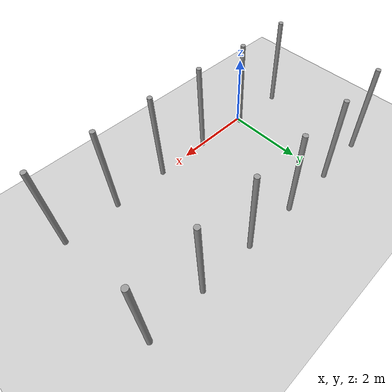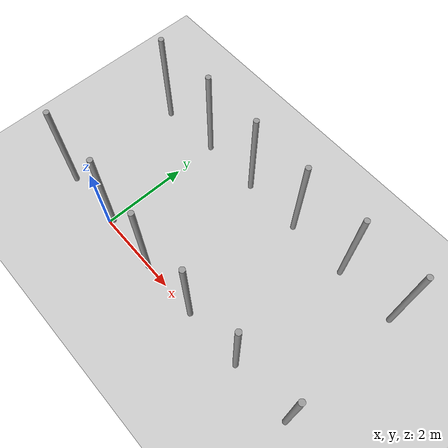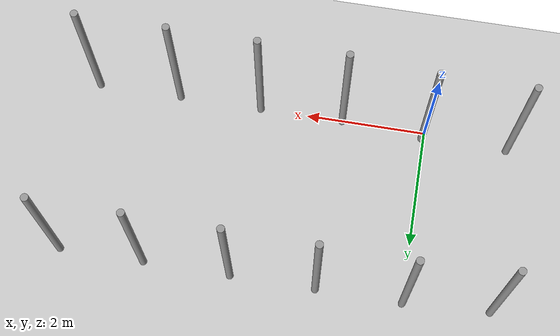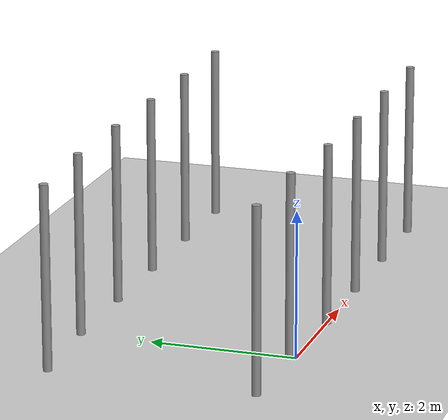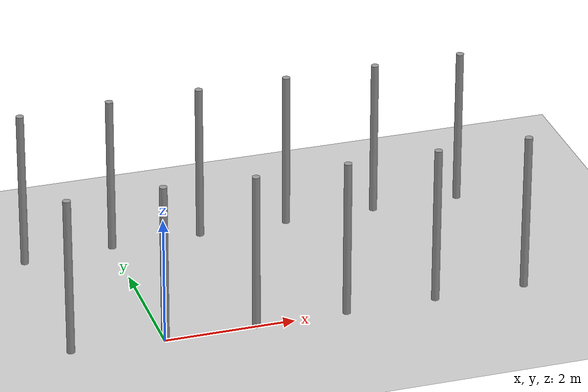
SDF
<sdf version="1.6">
 <world name="default">
  <light name="sun" type="directional">
   <pose>0 0 10 0 -0 0</pose>
   <diffuse>0.8 0.8 0.8 1</diffuse>
   <specular>0.1 0.1 0.1 1</specular>
   <attenuation>
    <range>1000</range>
    <constant>0.9</constant>
    <linear>0.01</linear>
    <quadratic>0.001</quadratic>
   </attenuation>
   <direction>-0.5 0.5 -1</direction>
  </light>
  <model name="ground_plane">
   <static>1</static>
   <link name="link">
    <collision name="collision">
     <geometry><plane><normal>0 0 1</normal><size>100 100</size></plane></geometry>
     <surface><friction><ode><mu>100</mu><mu2>50</mu2></ode></friction></surface>
    </collision>
    <visual name="visual">
     <cast_shadows>0</cast_shadows>
     <geometry><plane><normal>0 0 1</normal><size>100 100</size></plane></geometry>
     <material>
      <script><uri>file://media/materials/scripts/gazebo.material</uri><name>Gazebo/Grey</name></script>
     </material>
    </visual>
   </link>
  </model>
  <gravity>0 0 -9.8</gravity>
  <magnetic_field>6e-06 2.3e-05 -4.2e-05</magnetic_field>
  <atmosphere type="adiabatic"/>
  <physics name="default_physics" default="0" type="ode">
   <max_step_size>0.001</max_step_size>
   <real_time_factor>1</real_time_factor>
   <real_time_update_rate>1000</real_time_update_rate>
  </physics>
  <scene><ambient>0.4 0.4 0.4 1</ambient><background>0.7 0.7 0.7 1</background><shadows>1</shadows></scene>
  <spherical_coordinates>
   <surface_model>EARTH_WGS84</surface_model>
   <latitude_deg>0</latitude_deg>
   <longitude_deg>0</longitude_deg>
   <elevation>0</elevation>
   <heading_deg>0</heading_deg>
  </spherical_coordinates>
  <model name="pole_8">
   <link name="link_0">
    <inertial>
     <mass>0.0364582</mass>
     <inertia>
      <ixx>0.00312124</ixx>
      <ixy>0</ixy>
      <ixz>0</ixz>
      <iyy>0.00312124</iyy>
      <iyz>0</iyz>
      <izz>0.00016615</izz>
     </inertia>
    </inertial>
    <visual name="visual">
     <geometry><cylinder><radius>0.06</radius><length>2.5</length></cylinder></geometry>
     <material>
      <lighting>1</lighting>
      <script><uri>file://media/materials/scripts/gazebo.material</uri><name>Gazebo/Grey</name></script>
      <ambient>0.3 0.3 0.3 1</ambient>
      <diffuse>0.7 0.7 0.7 1</diffuse>
      <specular>0.01 0.01 0.01 1</specular>
      <emissive>0 0 0 1</emissive>
      <shader type="vertex"><normal_map>__default__</normal_map></shader>
     </material>
    </visual>
    <collision name="collision">
     <geometry><cylinder><radius>0.06</radius><length>2.5</length></cylinder></geometry>
     <surface>
      <friction>
       <ode><mu>1</mu><mu2>1</mu2><fdir1>0 0 0</fdir1><slip1>0</slip1><slip2>0</slip2></ode>
       <torsional>
        <coefficient>1</coefficient>
        <patch_radius>0</patch_radius>
        <surface_radius>0</surface_radius>
        <use_patch_radius>1</use_patch_radius>
        <ode><slip>0</slip></ode>
       </torsional>
      </friction>
      <bounce><restitution_coefficient>0</restitution_coefficient><threshold>1e+06</threshold></bounce>
      <contact>
       <collide_without_contact>0</collide_without_contact>
       <collide_without_contact_bitmask>1</collide_without_contact_bitmask>
       <collide_bitmask>1</collide_bitmask>
       <ode>
        <soft_cfm>0</soft_cfm>
        <soft_erp>0.2</soft_erp>
        <kp>1e+13</kp>
        <kd>1</kd>
        <max_vel>0.01</max_vel>
        <min_depth>0</min_depth>
       </ode>
       <bullet>
        <split_impulse>1</split_impulse>
        <split_impulse_penetration_threshold>-0.01</split_impulse_penetration_threshold>
        <soft_cfm>0</soft_cfm>
        <soft_erp>0.2</soft_erp>
        <kp>1e+13</kp>
        <kd>1</kd>
       </bullet>
      </contact>
     </surface>
    </collision>
   </link>
   <static>0</static>
   <pose>1.40427 0.001806 1.24999 -1e-06 1e-06 -0.022105</pose>
  </model>
  <model name="pole_9">
   <link name="link_0">
    <inertial>
     <mass>0.0364582</mass>
     <inertia>
      <ixx>0.00312124</ixx>
      <ixy>0</ixy>
      <ixz>0</ixz>
      <iyy>0.00312124</iyy>
      <iyz>0</iyz>
      <izz>0.00016615</izz>
     </inertia>
    </inertial>
    <visual name="visual">
     <geometry><cylinder><radius>0.06</radius><length>2.5</length></cylinder></geometry>
     <material>
      <lighting>1</lighting>
      <script><uri>file://media/materials/scripts/gazebo.material</uri><name>Gazebo/Grey</name></script>
      <ambient>0.3 0.3 0.3 1</ambient>
      <diffuse>0.7 0.7 0.7 1</diffuse>
      <specular>0.01 0.01 0.01 1</specular>
      <emissive>0 0 0 1</emissive>
      <shader type="vertex"><normal_map>__default__</normal_map></shader>
     </material>
    </visual>
    <collision name="collision">
     <geometry><cylinder><radius>0.06</radius><length>2.5</length></cylinder></geometry>
     <surface>
      <friction>
       <ode><mu>1</mu><mu2>1</mu2><fdir1>0 0 0</fdir1><slip1>0</slip1><slip2>0</slip2></ode>
       <torsional>
        <coefficient>1</coefficient>
        <patch_radius>0</patch_radius>
        <surface_radius>0</surface_radius>
        <use_patch_radius>1</use_patch_radius>
        <ode><slip>0</slip></ode>
       </torsional>
      </friction>
      <bounce><restitution_coefficient>0</restitution_coefficient><threshold>1e+06</threshold></bounce>
      <contact>
       <collide_without_contact>0</collide_without_contact>
       <collide_without_contact_bitmask>1</collide_without_contact_bitmask>
       <collide_bitmask>1</collide_bitmask>
       <ode>
        <soft_cfm>0</soft_cfm>
        <soft_erp>0.2</soft_erp>
        <kp>1e+13</kp>
        <kd>1</kd>
        <max_vel>0.01</max_vel>
        <min_depth>0</min_depth>
       </ode>
       <bullet>
        <split_impulse>1</split_impulse>
        <split_impulse_penetration_threshold>-0.01</split_impulse_penetration_threshold>
        <soft_cfm>0</soft_cfm>
        <soft_erp>0.2</soft_erp>
        <kp>1e+13</kp>
        <kd>1</kd>
       </bullet>
      </contact>
     </surface>
    </collision>
   </link>
   <static>0</static>
   <pose>2.80805 0.001808 1.24999 -1e-06 1e-06 -0.038794</pose>
  </model>
  <model name="pole_10">
   <link name="link_0">
    <inertial>
     <mass>0.0364582</mass>
     <inertia>
      <ixx>0.00312124</ixx>
      <ixy>0</ixy>
      <ixz>0</ixz>
      <iyy>0.00312124</iyy>
      <iyz>0</iyz>
      <izz>0.00016615</izz>
     </inertia>
    </inertial>
    <visual name="visual">
     <geometry><cylinder><radius>0.06</radius><length>2.5</length></cylinder></geometry>
     <material>
      <lighting>1</lighting>
      <script><uri>file://media/materials/scripts/gazebo.material</uri><name>Gazebo/Grey</name></script>
      <ambient>0.3 0.3 0.3 1</ambient>
      <diffuse>0.7 0.7 0.7 1</diffuse>
      <specular>0.01 0.01 0.01 1</specular>
      <emissive>0 0 0 1</emissive>
      <shader type="vertex"><normal_map>__default__</normal_map></shader>
     </material>
    </visual>
    <collision name="collision">
     <geometry><cylinder><radius>0.06</radius><length>2.5</length></cylinder></geometry>
     <surface>
      <friction>
       <ode><mu>1</mu><mu2>1</mu2><fdir1>0 0 0</fdir1><slip1>0</slip1><slip2>0</slip2></ode>
       <torsional>
        <coefficient>1</coefficient>
        <patch_radius>0</patch_radius>
        <surface_radius>0</surface_radius>
        <use_patch_radius>1</use_patch_radius>
        <ode><slip>0</slip></ode>
       </torsional>
      </friction>
      <bounce><restitution_coefficient>0</restitution_coefficient><threshold>1e+06</threshold></bounce>
      <contact>
       <collide_without_contact>0</collide_without_contact>
       <collide_without_contact_bitmask>1</collide_without_contact_bitmask>
       <collide_bitmask>1</collide_bitmask>
       <ode>
        <soft_cfm>0</soft_cfm>
        <soft_erp>0.2</soft_erp>
        <kp>1e+13</kp>
        <kd>1</kd>
        <max_vel>0.01</max_vel>
        <min_depth>0</min_depth>
       </ode>
       <bullet>
        <split_impulse>1</split_impulse>
        <split_impulse_penetration_threshold>-0.01</split_impulse_penetration_threshold>
        <soft_cfm>0</soft_cfm>
        <soft_erp>0.2</soft_erp>
        <kp>1e+13</kp>
        <kd>1</kd>
       </bullet>
      </contact>
     </surface>
    </collision>
   </link>
   <static>0</static>
   <pose>4.20401 0.001914 1.25 -2e-06 -2e-06 -0.025887</pose>
  </model>
  <model name="pole_11">
   <link name="link_0">
    <inertial>
     <mass>0.0364582</mass>
     <inertia>
      <ixx>0.00312124</ixx>
      <ixy>0</ixy>
      <ixz>0</ixz>
      <iyy>0.00312124</iyy>
      <iyz>0</iyz>
      <izz>0.00016615</izz>
     </inertia>
    </inertial>
    <visual name="visual">
     <geometry><cylinder><radius>0.06</radius><length>2.5</length></cylinder></geometry>
     <material>
      <lighting>1</lighting>
      <script><uri>file://media/materials/scripts/gazebo.material</uri><name>Gazebo/Grey</name></script>
      <ambient>0.3 0.3 0.3 1</ambient>
      <diffuse>0.7 0.7 0.7 1</diffuse>
      <specular>0.01 0.01 0.01 1</specular>
      <emissive>0 0 0 1</emissive>
      <shader type="vertex"><normal_map>__default__</normal_map></shader>
     </material>
    </visual>
    <collision name="collision">
     <geometry><cylinder><radius>0.06</radius><length>2.5</length></cylinder></geometry>
     <surface>
      <friction>
       <ode><mu>1</mu><mu2>1</mu2><fdir1>0 0 0</fdir1><slip1>0</slip1><slip2>0</slip2></ode>
       <torsional>
        <coefficient>1</coefficient>
        <patch_radius>0</patch_radius>
        <surface_radius>0</surface_radius>
        <use_patch_radius>1</use_patch_radius>
        <ode><slip>0</slip></ode>
       </torsional>
      </friction>
      <bounce><restitution_coefficient>0</restitution_coefficient><threshold>1e+06</threshold></bounce>
      <contact>
       <collide_without_contact>0</collide_without_contact>
       <collide_without_contact_bitmask>1</collide_without_contact_bitmask>
       <collide_bitmask>1</collide_bitmask>
       <ode>
        <soft_cfm>0</soft_cfm>
        <soft_erp>0.2</soft_erp>
        <kp>1e+13</kp>
        <kd>1</kd>
        <max_vel>0.01</max_vel>
        <min_depth>0</min_depth>
       </ode>
       <bullet>
        <split_impulse>1</split_impulse>
        <split_impulse_penetration_threshold>-0.01</split_impulse_penetration_threshold>
        <soft_cfm>0</soft_cfm>
        <soft_erp>0.2</soft_erp>
        <kp>1e+13</kp>
        <kd>1</kd>
       </bullet>
      </contact>
     </surface>
    </collision>
   </link>
   <static>0</static>
   <pose>5.61625 0.001535 1.25 0 -2e-06 -0.022503</pose>
  </model>
  <model name="pole_11_clone">
   <link name="link_0">
    <inertial>
     <mass>0.0364582</mass>
     <inertia>
      <ixx>0.00312124</ixx>
      <ixy>0</ixy>
      <ixz>0</ixz>
      <iyy>0.00312124</iyy>
      <iyz>0</iyz>
      <izz>0.00016615</izz>
     </inertia>
    </inertial>
    <visual name="visual">
     <geometry><cylinder><radius>0.06</radius><length>2.5</length></cylinder></geometry>
     <material>
      <lighting>1</lighting>
      <script><uri>file://media/materials/scripts/gazebo.material</uri><name>Gazebo/Grey</name></script>
      <ambient>0.3 0.3 0.3 1</ambient>
      <diffuse>0.7 0.7 0.7 1</diffuse>
      <specular>0.01 0.01 0.01 1</specular>
      <emissive>0 0 0 1</emissive>
      <shader type="vertex"><normal_map>__default__</normal_map></shader>
     </material>
    </visual>
    <collision name="collision">
     <geometry><cylinder><radius>0.06</radius><length>2.5</length></cylinder></geometry>
     <surface>
      <friction>
       <ode><mu>1</mu><mu2>1</mu2><fdir1>0 0 0</fdir1><slip1>0</slip1><slip2>0</slip2></ode>
       <torsional>
        <coefficient>1</coefficient>
        <patch_radius>0</patch_radius>
        <surface_radius>0</surface_radius>
        <use_patch_radius>1</use_patch_radius>
        <ode><slip>0</slip></ode>
       </torsional>
      </friction>
      <bounce><restitution_coefficient>0</restitution_coefficient><threshold>1e+06</threshold></bounce>
      <contact>
       <collide_without_contact>0</collide_without_contact>
       <collide_without_contact_bitmask>1</collide_without_contact_bitmask>
       <collide_bitmask>1</collide_bitmask>
       <ode>
        <soft_cfm>0</soft_cfm>
        <soft_erp>0.2</soft_erp>
        <kp>1e+13</kp>
        <kd>1</kd>
        <max_vel>0.01</max_vel>
        <min_depth>0</min_depth>
       </ode>
       <bullet>
        <split_impulse>1</split_impulse>
        <split_impulse_penetration_threshold>-0.01</split_impulse_penetration_threshold>
        <soft_cfm>0</soft_cfm>
        <soft_erp>0.2</soft_erp>
        <kp>1e+13</kp>
        <kd>1</kd>
       </bullet>
      </contact>
     </surface>
    </collision>
   </link>
   <static>0</static>
   <pose>0.000732 2.98386 1.25 -1e-06 1e-06 -0.029601</pose>
  </model>
  <model name="pole_2">
   <link name="link_0">
    <inertial>
     <mass>0.0364582</mass>
     <inertia>
      <ixx>0.00312124</ixx>
      <ixy>0</ixy>
      <ixz>0</ixz>
      <iyy>0.00312124</iyy>
      <iyz>0</iyz>
      <izz>0.00016615</izz>
     </inertia>
    </inertial>
    <visual name="visual">
     <geometry><cylinder><radius>0.06</radius><length>2.5</length></cylinder></geometry>
     <material>
      <lighting>1</lighting>
      <script><uri>file://media/materials/scripts/gazebo.material</uri><name>Gazebo/Grey</name></script>
      <ambient>0.3 0.3 0.3 1</ambient>
      <diffuse>0.7 0.7 0.7 1</diffuse>
      <specular>0.01 0.01 0.01 1</specular>
      <emissive>0 0 0 1</emissive>
      <shader type="vertex"><normal_map>__default__</normal_map></shader>
     </material>
    </visual>
    <collision name="collision">
     <geometry><cylinder><radius>0.06</radius><length>2.5</length></cylinder></geometry>
     <surface>
      <friction>
       <ode><mu>1</mu><mu2>1</mu2><fdir1>0 0 0</fdir1><slip1>0</slip1><slip2>0</slip2></ode>
       <torsional>
        <coefficient>1</coefficient>
        <patch_radius>0</patch_radius>
        <surface_radius>0</surface_radius>
        <use_patch_radius>1</use_patch_radius>
        <ode><slip>0</slip></ode>
       </torsional>
      </friction>
      <bounce><restitution_coefficient>0</restitution_coefficient><threshold>1e+06</threshold></bounce>
      <contact>
       <collide_without_contact>0</collide_without_contact>
       <collide_without_contact_bitmask>1</collide_without_contact_bitmask>
       <collide_bitmask>1</collide_bitmask>
       <ode>
        <soft_cfm>0</soft_cfm>
        <soft_erp>0.2</soft_erp>
        <kp>1e+13</kp>
        <kd>1</kd>
        <max_vel>0.01</max_vel>
        <min_depth>0</min_depth>
       </ode>
       <bullet>
        <split_impulse>1</split_impulse>
        <split_impulse_penetration_threshold>-0.01</split_impulse_penetration_threshold>
        <soft_cfm>0</soft_cfm>
        <soft_erp>0.2</soft_erp>
        <kp>1e+13</kp>
        <kd>1</kd>
       </bullet>
      </contact>
     </surface>
    </collision>
   </link>
   <static>0</static>
   <pose>0.034253 0.09475 1.25 -1e-06 1e-06 0.043173</pose>
  </model>
  <model name="pole_3">
   <link name="link_0">
    <inertial>
     <mass>0.0364582</mass>
     <inertia>
      <ixx>0.00312124</ixx>
      <ixy>0</ixy>
      <ixz>0</ixz>
      <iyy>0.00312124</iyy>
      <iyz>0</iyz>
      <izz>0.00016615</izz>
     </inertia>
    </inertial>
    <visual name="visual">
     <geometry><cylinder><radius>0.06</radius><length>2.5</length></cylinder></geometry>
     <material>
      <lighting>1</lighting>
      <script><uri>file://media/materials/scripts/gazebo.material</uri><name>Gazebo/Grey</name></script>
      <ambient>0.3 0.3 0.3 1</ambient>
      <diffuse>0.7 0.7 0.7 1</diffuse>
      <specular>0.01 0.01 0.01 1</specular>
      <emissive>0 0 0 1</emissive>
      <shader type="vertex"><normal_map>__default__</normal_map></shader>
     </material>
    </visual>
    <collision name="collision">
     <geometry><cylinder><radius>0.06</radius><length>2.5</length></cylinder></geometry>
     <surface>
      <friction>
       <ode><mu>1</mu><mu2>1</mu2><fdir1>0 0 0</fdir1><slip1>0</slip1><slip2>0</slip2></ode>
       <torsional>
        <coefficient>1</coefficient>
        <patch_radius>0</patch_radius>
        <surface_radius>0</surface_radius>
        <use_patch_radius>1</use_patch_radius>
        <ode><slip>0</slip></ode>
       </torsional>
      </friction>
      <bounce><restitution_coefficient>0</restitution_coefficient><threshold>1e+06</threshold></bounce>
      <contact>
       <collide_without_contact>0</collide_without_contact>
       <collide_without_contact_bitmask>1</collide_without_contact_bitmask>
       <collide_bitmask>1</collide_bitmask>
       <ode>
        <soft_cfm>0</soft_cfm>
        <soft_erp>0.2</soft_erp>
        <kp>1e+13</kp>
        <kd>1</kd>
        <max_vel>0.01</max_vel>
        <min_depth>0</min_depth>
       </ode>
       <bullet>
        <split_impulse>1</split_impulse>
        <split_impulse_penetration_threshold>-0.01</split_impulse_penetration_threshold>
        <soft_cfm>0</soft_cfm>
        <soft_erp>0.2</soft_erp>
        <kp>1e+13</kp>
        <kd>1</kd>
       </bullet>
      </contact>
     </surface>
    </collision>
   </link>
   <static>0</static>
   <pose>1.40477 2.98155 1.25 -0 1e-06 -0.018289</pose>
  </model>
  <model name="pole_5">
   <link name="link_0">
    <inertial>
     <mass>0.0364582</mass>
     <inertia>
      <ixx>0.00312124</ixx>
      <ixy>0</ixy>
      <ixz>0</ixz>
      <iyy>0.00312124</iyy>
      <iyz>0</iyz>
      <izz>0.00016615</izz>
     </inertia>
    </inertial>
    <visual name="visual">
     <geometry><cylinder><radius>0.06</radius><length>2.5</length></cylinder></geometry>
     <material>
      <lighting>1</lighting>
      <script><uri>file://media/materials/scripts/gazebo.material</uri><name>Gazebo/Grey</name></script>
      <ambient>0.3 0.3 0.3 1</ambient>
      <diffuse>0.7 0.7 0.7 1</diffuse>
      <specular>0.01 0.01 0.01 1</specular>
      <emissive>0 0 0 1</emissive>
      <shader type="vertex"><normal_map>__default__</normal_map></shader>
     </material>
    </visual>
    <collision name="collision">
     <geometry><cylinder><radius>0.06</radius><length>2.5</length></cylinder></geometry>
     <surface>
      <friction>
       <ode><mu>1</mu><mu2>1</mu2><fdir1>0 0 0</fdir1><slip1>0</slip1><slip2>0</slip2></ode>
       <torsional>
        <coefficient>1</coefficient>
        <patch_radius>0</patch_radius>
        <surface_radius>0</surface_radius>
        <use_patch_radius>1</use_patch_radius>
        <ode><slip>0</slip></ode>
       </torsional>
      </friction>
      <bounce><restitution_coefficient>0</restitution_coefficient><threshold>1e+06</threshold></bounce>
      <contact>
       <collide_without_contact>0</collide_without_contact>
       <collide_without_contact_bitmask>1</collide_without_contact_bitmask>
       <collide_bitmask>1</collide_bitmask>
       <ode>
        <soft_cfm>0</soft_cfm>
        <soft_erp>0.2</soft_erp>
        <kp>1e+13</kp>
        <kd>1</kd>
        <max_vel>0.01</max_vel>
        <min_depth>0</min_depth>
       </ode>
       <bullet>
        <split_impulse>1</split_impulse>
        <split_impulse_penetration_threshold>-0.01</split_impulse_penetration_threshold>
        <soft_cfm>0</soft_cfm>
        <soft_erp>0.2</soft_erp>
        <kp>1e+13</kp>
        <kd>1</kd>
       </bullet>
      </contact>
     </surface>
    </collision>
   </link>
   <static>0</static>
   <pose>2.79587 2.98129 1.25 -1e-06 1e-06 -0.016723</pose>
  </model>
  <model name="pole_6">
   <link name="link_0">
    <inertial>
     <mass>0.0364582</mass>
     <inertia>
      <ixx>0.00312124</ixx>
      <ixy>0</ixy>
      <ixz>0</ixz>
      <iyy>0.00312124</iyy>
      <iyz>0</iyz>
      <izz>0.00016615</izz>
     </inertia>
    </inertial>
    <visual name="visual">
     <geometry><cylinder><radius>0.06</radius><length>2.5</length></cylinder></geometry>
     <material>
      <lighting>1</lighting>
      <script><uri>file://media/materials/scripts/gazebo.material</uri><name>Gazebo/Grey</name></script>
      <ambient>0.3 0.3 0.3 1</ambient>
      <diffuse>0.7 0.7 0.7 1</diffuse>
      <specular>0.01 0.01 0.01 1</specular>
      <emissive>0 0 0 1</emissive>
      <shader type="vertex"><normal_map>__default__</normal_map></shader>
     </material>
    </visual>
    <collision name="collision">
     <geometry><cylinder><radius>0.06</radius><length>2.5</length></cylinder></geometry>
     <surface>
      <friction>
       <ode><mu>1</mu><mu2>1</mu2><fdir1>0 0 0</fdir1><slip1>0</slip1><slip2>0</slip2></ode>
       <torsional>
        <coefficient>1</coefficient>
        <patch_radius>0</patch_radius>
        <surface_radius>0</surface_radius>
        <use_patch_radius>1</use_patch_radius>
        <ode><slip>0</slip></ode>
       </torsional>
      </friction>
      <bounce><restitution_coefficient>0</restitution_coefficient><threshold>1e+06</threshold></bounce>
      <contact>
       <collide_without_contact>0</collide_without_contact>
       <collide_without_contact_bitmask>1</collide_without_contact_bitmask>
       <collide_bitmask>1</collide_bitmask>
       <ode>
        <soft_cfm>0</soft_cfm>
        <soft_erp>0.2</soft_erp>
        <kp>1e+13</kp>
        <kd>1</kd>
        <max_vel>0.01</max_vel>
        <min_depth>0</min_depth>
       </ode>
       <bullet>
        <split_impulse>1</split_impulse>
        <split_impulse_penetration_threshold>-0.01</split_impulse_penetration_threshold>
        <soft_cfm>0</soft_cfm>
        <soft_erp>0.2</soft_erp>
        <kp>1e+13</kp>
        <kd>1</kd>
       </bullet>
      </contact>
     </surface>
    </collision>
   </link>
   <static>0</static>
   <pose>4.22242 2.98128 1.25 1e-06 1e-06 -0.014801</pose>
  </model>
  <model name="pole_7">
   <link name="link_0">
    <inertial>
     <mass>0.0364582</mass>
     <inertia>
      <ixx>0.00312124</ixx>
      <ixy>0</ixy>
      <ixz>0</ixz>
      <iyy>0.00312124</iyy>
      <iyz>0</iyz>
      <izz>0.00016615</izz>
     </inertia>
    </inertial>
    <visual name="visual">
     <geometry><cylinder><radius>0.06</radius><length>2.5</length></cylinder></geometry>
     <material>
      <lighting>1</lighting>
      <script><uri>file://media/materials/scripts/gazebo.material</uri><name>Gazebo/Grey</name></script>
      <ambient>0.3 0.3 0.3 1</ambient>
      <diffuse>0.7 0.7 0.7 1</diffuse>
      <specular>0.01 0.01 0.01 1</specular>
      <emissive>0 0 0 1</emissive>
      <shader type="vertex"><normal_map>__default__</normal_map></shader>
     </material>
    </visual>
    <collision name="collision">
     <geometry><cylinder><radius>0.06</radius><length>2.5</length></cylinder></geometry>
     <surface>
      <friction>
       <ode><mu>1</mu><mu2>1</mu2><fdir1>0 0 0</fdir1><slip1>0</slip1><slip2>0</slip2></ode>
       <torsional>
        <coefficient>1</coefficient>
        <patch_radius>0</patch_radius>
        <surface_radius>0</surface_radius>
        <use_patch_radius>1</use_patch_radius>
        <ode><slip>0</slip></ode>
       </torsional>
      </friction>
      <bounce><restitution_coefficient>0</restitution_coefficient><threshold>1e+06</threshold></bounce>
      <contact>
       <collide_without_contact>0</collide_without_contact>
       <collide_without_contact_bitmask>1</collide_without_contact_bitmask>
       <collide_bitmask>1</collide_bitmask>
       <ode>
        <soft_cfm>0</soft_cfm>
        <soft_erp>0.2</soft_erp>
        <kp>1e+13</kp>
        <kd>1</kd>
        <max_vel>0.01</max_vel>
        <min_depth>0</min_depth>
       </ode>
       <bullet>
        <split_impulse>1</split_impulse>
        <split_impulse_penetration_threshold>-0.01</split_impulse_penetration_threshold>
        <soft_cfm>0</soft_cfm>
        <soft_erp>0.2</soft_erp>
        <kp>1e+13</kp>
        <kd>1</kd>
       </bullet>
      </contact>
     </surface>
    </collision>
   </link>
   <static>0</static>
   <pose>5.60737 2.98132 1.25 -1e-06 2e-06 -0.015193</pose>
  </model>
  <model name="pole_2_clone">
   <link name="link_0">
    <inertial>
     <mass>0.0364582</mass>
     <inertia>
      <ixx>0.00312124</ixx>
      <ixy>0</ixy>
      <ixz>0</ixz>
      <iyy>0.00312124</iyy>
      <iyz>0</iyz>
      <izz>0.00016615</izz>
     </inertia>
    </inertial>
    <visual name="visual">
     <geometry><cylinder><radius>0.06</radius><length>2.5</length></cylinder></geometry>
     <material>
      <lighting>1</lighting>
      <script><uri>file://media/materials/scripts/gazebo.material</uri><name>Gazebo/Grey</name></script>
      <ambient>0.3 0.3 0.3 1</ambient>
      <diffuse>0.7 0.7 0.7 1</diffuse>
      <specular>0.01 0.01 0.01 1</specular>
      <emissive>0 0 0 1</emissive>
      <shader type="vertex"><normal_map>__default__</normal_map></shader>
     </material>
    </visual>
    <collision name="collision">
     <geometry><cylinder><radius>0.06</radius><length>2.5</length></cylinder></geometry>
     <surface>
      <friction>
       <ode><mu>1</mu><mu2>1</mu2><fdir1>0 0 0</fdir1><slip1>0</slip1><slip2>0</slip2></ode>
       <torsional>
        <coefficient>1</coefficient>
        <patch_radius>0</patch_radius>
        <surface_radius>0</surface_radius>
        <use_patch_radius>1</use_patch_radius>
        <ode><slip>0</slip></ode>
       </torsional>
      </friction>
      <bounce><restitution_coefficient>0</restitution_coefficient><threshold>1e+06</threshold></bounce>
      <contact>
       <collide_without_contact>0</collide_without_contact>
       <collide_without_contact_bitmask>1</collide_without_contact_bitmask>
       <collide_bitmask>1</collide_bitmask>
       <ode>
        <soft_cfm>0</soft_cfm>
        <soft_erp>0.2</soft_erp>
        <kp>1e+13</kp>
        <kd>1</kd>
        <max_vel>0.01</max_vel>
        <min_depth>0</min_depth>
       </ode>
       <bullet>
        <split_impulse>1</split_impulse>
        <split_impulse_penetration_threshold>-0.01</split_impulse_penetration_threshold>
        <soft_cfm>0</soft_cfm>
        <soft_erp>0.2</soft_erp>
        <kp>1e+13</kp>
        <kd>1</kd>
       </bullet>
      </contact>
     </surface>
    </collision>
   </link>
   <static>0</static>
   <pose>-1.39993 0.092313 1.25 1e-06 -2e-06 0.041613</pose>
  </model>
  <model name="pole_2_clone_0">
   <link name="link_0">
    <inertial>
     <mass>0.0364582</mass>
     <inertia>
      <ixx>0.00312124</ixx>
      <ixy>0</ixy>
      <ixz>0</ixz>
      <iyy>0.00312124</iyy>
      <iyz>0</iyz>
      <izz>0.00016615</izz>
     </inertia>
    </inertial>
    <visual name="visual">
     <geometry><cylinder><radius>0.06</radius><length>2.5</length></cylinder></geometry>
     <material>
      <lighting>1</lighting>
      <script><uri>file://media/materials/scripts/gazebo.material</uri><name>Gazebo/Grey</name></script>
      <ambient>0.3 0.3 0.3 1</ambient>
      <diffuse>0.7 0.7 0.7 1</diffuse>
      <specular>0.01 0.01 0.01 1</specular>
      <emissive>0 0 0 1</emissive>
      <shader type="vertex"><normal_map>__default__</normal_map></shader>
     </material>
    </visual>
    <collision name="collision">
     <geometry><cylinder><radius>0.06</radius><length>2.5</length></cylinder></geometry>
     <surface>
      <friction>
       <ode><mu>1</mu><mu2>1</mu2><fdir1>0 0 0</fdir1><slip1>0</slip1><slip2>0</slip2></ode>
       <torsional>
        <coefficient>1</coefficient>
        <patch_radius>0</patch_radius>
        <surface_radius>0</surface_radius>
        <use_patch_radius>1</use_patch_radius>
        <ode><slip>0</slip></ode>
       </torsional>
      </friction>
      <bounce><restitution_coefficient>0</restitution_coefficient><threshold>1e+06</threshold></bounce>
      <contact>
       <collide_without_contact>0</collide_without_contact>
       <collide_without_contact_bitmask>1</collide_without_contact_bitmask>
       <collide_bitmask>1</collide_bitmask>
       <ode>
        <soft_cfm>0</soft_cfm>
        <soft_erp>0.2</soft_erp>
        <kp>1e+13</kp>
        <kd>1</kd>
        <max_vel>0.01</max_vel>
        <min_depth>0</min_depth>
       </ode>
       <bullet>
        <split_impulse>1</split_impulse>
        <split_impulse_penetration_threshold>-0.01</split_impulse_penetration_threshold>
        <soft_cfm>0</soft_cfm>
        <soft_erp>0.2</soft_erp>
        <kp>1e+13</kp>
        <kd>1</kd>
       </bullet>
      </contact>
     </surface>
    </collision>
   </link>
   <static>0</static>
   <pose>-1.39994 2.90046 1.24999 0 1e-06 0.042039</pose>
  </model>
 </world>
</sdf>
